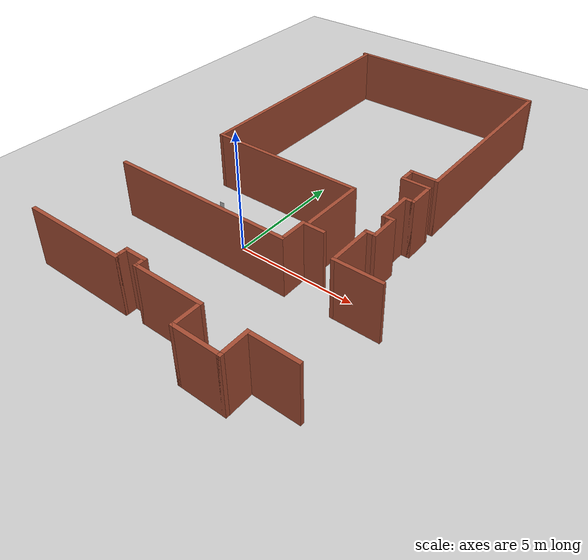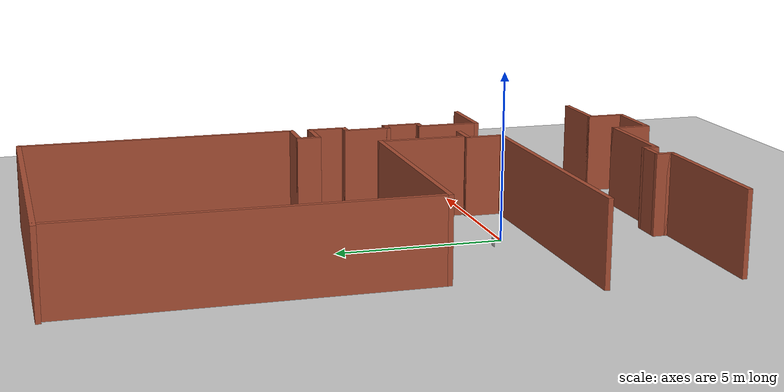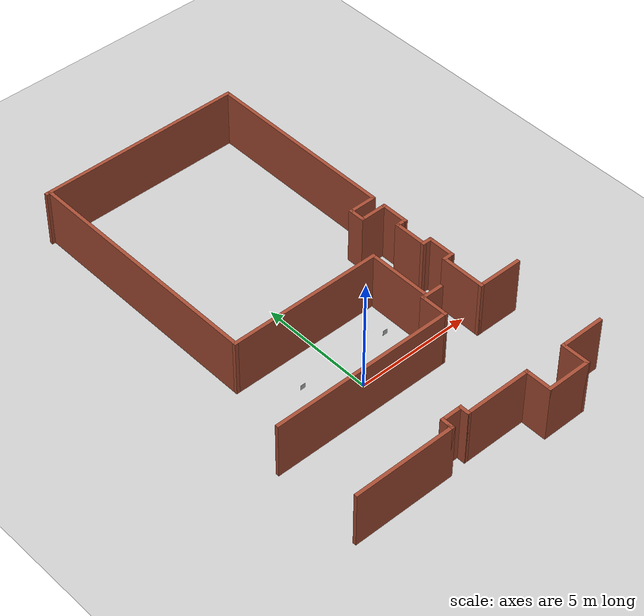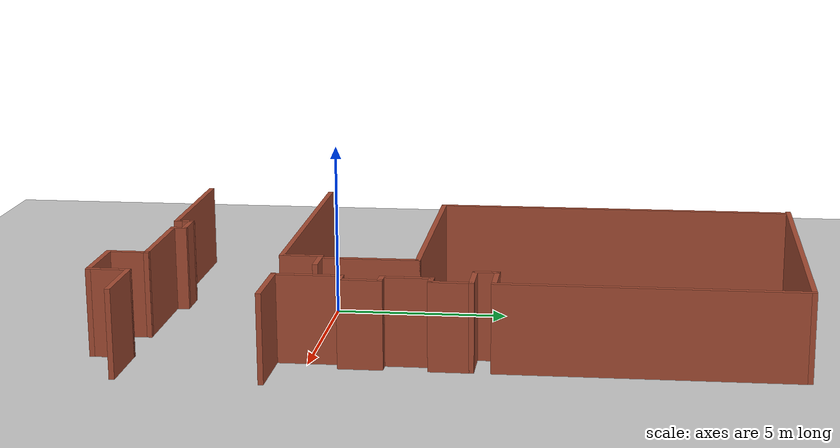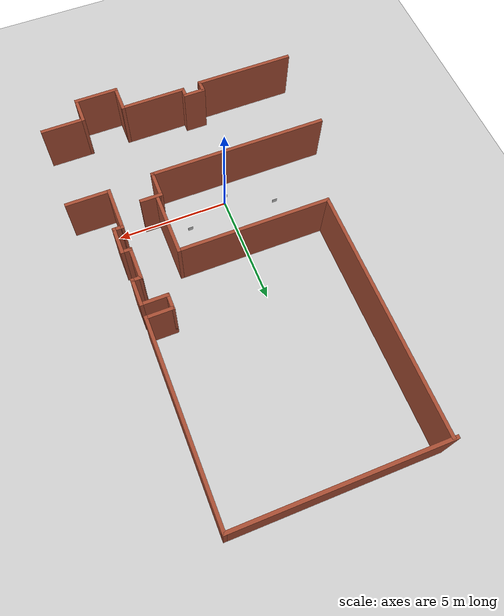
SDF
<sdf version="1.7">
 <world name="f1l3">
  <include><uri>model://f1l3</uri></include>
  <include>
   <uri>model://aruco1_pau_clase_resized</uri>
   <name>ar_marker_pau_1</name>
   <pose>2.0 1.0 0.5 0 0 1.57</pose>
  </include>
  <include>
   <uri>model://aruco2_pau_clase_resized</uri>
   <name>ar_marker_pau_2</name>
   <pose>-2.0 1.0 0.5 0 0 1.57</pose>
  </include>
  <include>
   <uri>model://aruco3_pau_clase_resized</uri>
   <name>ar_marker_pau_3</name>
   <pose>0.0 0 0.5 0 0 1.57</pose>
  </include>
  <include><uri>model://sun</uri></include>
  <include><uri>model://ground_plane</uri></include>
  <physics type="ode">
   <max_step_size>0.002</max_step_size>
   <real_time_factor>1.0</real_time_factor>
   <real_time_update_rate>500</real_time_update_rate>
   <gravity>0 0 -9.8</gravity>
  </physics>
  <scene>
   <ambient>0.4 0.4 0.4 1.0</ambient>
   <background>0.7 0.7 0.7 1.0</background>
   <shadows>false</shadows>
  </scene>
 </world>
</sdf>

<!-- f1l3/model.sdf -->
<sdf version='1.7'>
  <model name='Untitled'>
    <pose>0.831593 3.70943 0 0 -0 0</pose>
    <link name='Wall_0'>
      <collision name='Wall_0_Collision'>
        <geometry>
          <box>
            <size>8 0.15 2.5</size>
          </box>
        </geometry>
        <pose>0 0 1.25 0 -0 0</pose>
      </collision>
      <visual name='Wall_0_Visual'>
        <pose>0 0 1.25 0 -0 0</pose>
        <geometry>
          <box>
            <size>8 0.15 2.5</size>
          </box>
        </geometry>
        <material>
          <script>
            <uri>file://media/materials/scripts/gazebo.material</uri>
            <name>Gazebo/Bricks</name>
          </script>
          <ambient>1 1 1 1</ambient>
        </material>
        <meta>
          <layer>0</layer>
        </meta>
      </visual>
      <pose>-1.86397 -4.77145 0 0 -0 0</pose>
    </link>
    <link name='Wall_1'>
      <collision name='Wall_1_Collision'>
        <geometry>
          <box>
            <size>1.25 0.15 2.5</size>
          </box>
        </geometry>
        <pose>0 0 1.25 0 -0 0</pose>
      </collision>
      <visual name='Wall_1_Visual'>
        <pose>0 0 1.25 0 -0 0</pose>
        <geometry>
          <box>
            <size>1.25 0.15 2.5</size>
          </box>
        </geometry>
        <material>
          <script>
            <uri>file://media/materials/scripts/gazebo.material</uri>
            <name>Gazebo/Bricks</name>
          </script>
          <ambient>1 1 1 1</ambient>
        </material>
        <meta>
          <layer>0</layer>
        </meta>
      </visual>
      <pose>2.06103 -4.22145 0 0 -0 1.5708</pose>
    </link>
    <link name='Wall_10'>
      <collision name='Wall_10_Collision'>
        <geometry>
          <box>
            <size>3 0.15 2.5</size>
          </box>
        </geometry>
        <pose>0 0 1.25 0 -0 0</pose>
      </collision>
      <visual name='Wall_10_Visual'>
        <pose>0 0 1.25 0 -0 0</pose>
        <geometry>
          <box>
            <size>3 0.15 2.5</size>
          </box>
        </geometry>
        <material>
          <script>
            <uri>file://media/materials/scripts/gazebo.material</uri>
            <name>Gazebo/Bricks</name>
          </script>
          <ambient>1 1 1 1</ambient>
        </material>
        <meta>
          <layer>0</layer>
        </meta>
      </visual>
      <pose>0.739875 -8.63149 0 0 -0 0</pose>
    </link>
    <link name='Wall_11'>
      <collision name='Wall_11_Collision'>
        <geometry>
          <box>
            <size>1.25 0.15 2.5</size>
          </box>
        </geometry>
        <pose>0 0 1.25 0 -0 0</pose>
      </collision>
      <visual name='Wall_11_Visual'>
        <pose>0 0 1.25 0 -0 0</pose>
        <geometry>
          <box>
            <size>1.25 0.15 2.5</size>
          </box>
        </geometry>
        <material>
          <script>
            <uri>file://media/materials/scripts/gazebo.material</uri>
            <name>Gazebo/Bricks</name>
          </script>
          <ambient>1 1 1 1</ambient>
        </material>
        <meta>
          <layer>0</layer>
        </meta>
      </visual>
      <pose>2.16487 -9.18149 0 0 -0 -1.5708</pose>
    </link>
    <link name='Wall_12'>
      <collision name='Wall_12_Collision'>
        <geometry>
          <box>
            <size>2 0.15 2.5</size>
          </box>
        </geometry>
        <pose>0 0 1.25 0 -0 0</pose>
      </collision>
      <visual name='Wall_12_Visual'>
        <pose>0 0 1.25 0 -0 0</pose>
        <geometry>
          <box>
            <size>2 0.15 2.5</size>
          </box>
        </geometry>
        <material>
          <script>
            <uri>file://media/materials/scripts/gazebo.material</uri>
            <name>Gazebo/Bricks</name>
          </script>
          <ambient>1 1 1 1</ambient>
        </material>
        <meta>
          <layer>0</layer>
        </meta>
      </visual>
      <pose>3.08988 -9.73149 0 0 -0 0</pose>
    </link>
    <link name='Wall_13'>
      <collision name='Wall_13_Collision'>
        <geometry>
          <box>
            <size>1.25 0.15 2.5</size>
          </box>
        </geometry>
        <pose>0 0 1.25 0 -0 0</pose>
      </collision>
      <visual name='Wall_13_Visual'>
        <pose>0 0 1.25 0 -0 0</pose>
        <geometry>
          <box>
            <size>1.25 0.15 2.5</size>
          </box>
        </geometry>
        <material>
          <script>
            <uri>file://media/materials/scripts/gazebo.material</uri>
            <name>Gazebo/Bricks</name>
          </script>
          <ambient>1 1 1 1</ambient>
        </material>
        <meta>
          <layer>0</layer>
        </meta>
      </visual>
      <pose>4.01487 -9.18149 0 0 -0 1.5708</pose>
    </link>
    <link name='Wall_14'>
      <collision name='Wall_14_Collision'>
        <geometry>
          <box>
            <size>2 0.15 2.5</size>
          </box>
        </geometry>
        <pose>0 0 1.25 0 -0 0</pose>
      </collision>
      <visual name='Wall_14_Visual'>
        <pose>0 0 1.25 0 -0 0</pose>
        <geometry>
          <box>
            <size>2 0.15 2.5</size>
          </box>
        </geometry>
        <material>
          <script>
            <uri>file://media/materials/scripts/gazebo.material</uri>
            <name>Gazebo/Bricks</name>
          </script>
          <ambient>1 1 1 1</ambient>
        </material>
        <meta>
          <layer>0</layer>
        </meta>
      </visual>
      <pose>4.93987 -8.63149 0 0 -0 0</pose>
    </link>
    <link name='Wall_16'>
      <collision name='Wall_16_Collision'>
        <geometry>
          <box>
            <size>2 0.15 2.5</size>
          </box>
        </geometry>
        <pose>0 0 1.25 0 -0 0</pose>
      </collision>
      <visual name='Wall_16_Visual'>
        <pose>0 0 1.25 0 -0 0</pose>
        <geometry>
          <box>
            <size>2 0.15 2.5</size>
          </box>
        </geometry>
        <material>
          <script>
            <uri>file://media/materials/scripts/gazebo.material</uri>
            <name>Gazebo/Bricks</name>
          </script>
          <ambient>1 1 1 1</ambient>
        </material>
        <meta>
          <layer>0</layer>
        </meta>
      </visual>
      <pose>4.96012 -4.61851 0 0 -0 3.14159</pose>
    </link>
    <link name='Wall_17'>
      <collision name='Wall_17_Collision'>
        <geometry>
          <box>
            <size>2 0.15 2.5</size>
          </box>
        </geometry>
        <pose>0 0 1.25 0 -0 0</pose>
      </collision>
      <visual name='Wall_17_Visual'>
        <pose>0 0 1.25 0 -0 0</pose>
        <geometry>
          <box>
            <size>2 0.15 2.5</size>
          </box>
        </geometry>
        <material>
          <script>
            <uri>file://media/materials/scripts/gazebo.material</uri>
            <name>Gazebo/Bricks</name>
          </script>
          <ambient>1 1 1 1</ambient>
        </material>
        <meta>
          <layer>0</layer>
        </meta>
      </visual>
      <pose>4.03512 -3.69351 0 0 -0 1.5708</pose>
    </link>
    <link name='Wall_18'>
      <collision name='Wall_18_Collision'>
        <geometry>
          <box>
            <size>0.5 0.15 2.5</size>
          </box>
        </geometry>
        <pose>0 0 1.25 0 -0 0</pose>
      </collision>
      <visual name='Wall_18_Visual'>
        <pose>0 0 1.25 0 -0 0</pose>
        <geometry>
          <box>
            <size>0.5 0.15 2.5</size>
          </box>
        </geometry>
        <material>
          <script>
            <uri>file://media/materials/scripts/gazebo.material</uri>
            <name>Gazebo/Bricks</name>
          </script>
          <ambient>1 1 1 1</ambient>
        </material>
        <meta>
          <layer>0</layer>
        </meta>
      </visual>
      <pose>4.21012 -2.76851 0 0 -0 0</pose>
    </link>
    <link name='Wall_19'>
      <collision name='Wall_19_Collision'>
        <geometry>
          <box>
            <size>1.25 0.15 2.5</size>
          </box>
        </geometry>
        <pose>0 0 1.25 0 -0 0</pose>
      </collision>
      <visual name='Wall_19_Visual'>
        <pose>0 0 1.25 0 -0 0</pose>
        <geometry>
          <box>
            <size>1.25 0.15 2.5</size>
          </box>
        </geometry>
        <material>
          <script>
            <uri>file://media/materials/scripts/gazebo.material</uri>
            <name>Gazebo/Bricks</name>
          </script>
          <ambient>1 1 1 1</ambient>
        </material>
        <meta>
          <layer>0</layer>
        </meta>
      </visual>
      <pose>4.38513 -2.21851 0 0 -0 1.5708</pose>
    </link>
    <link name='Wall_20'>
      <collision name='Wall_20_Collision'>
        <geometry>
          <box>
            <size>0.5 0.15 2.5</size>
          </box>
        </geometry>
        <pose>0 0 1.25 0 -0 0</pose>
      </collision>
      <visual name='Wall_20_Visual'>
        <pose>0 0 1.25 0 -0 0</pose>
        <geometry>
          <box>
            <size>0.5 0.15 2.5</size>
          </box>
        </geometry>
        <material>
          <script>
            <uri>file://media/materials/scripts/gazebo.material</uri>
            <name>Gazebo/Bricks</name>
          </script>
          <ambient>1 1 1 1</ambient>
        </material>
        <meta>
          <layer>0</layer>
        </meta>
      </visual>
      <pose>4.21012 -1.66851 0 0 -0 3.14159</pose>
    </link>
    <link name='Wall_23'>
      <collision name='Wall_23_Collision'>
        <geometry>
          <box>
            <size>1.5 0.15 2.5</size>
          </box>
        </geometry>
        <pose>0 0 1.25 0 -0 0</pose>
      </collision>
      <visual name='Wall_23_Visual'>
        <pose>0 0 1.25 0 -0 0</pose>
        <geometry>
          <box>
            <size>1.5 0.15 2.5</size>
          </box>
        </geometry>
        <material>
          <script>
            <uri>file://media/materials/scripts/gazebo.material</uri>
            <name>Gazebo/Bricks</name>
          </script>
          <ambient>1 1 1 1</ambient>
        </material>
        <meta>
          <layer>0</layer>
        </meta>
      </visual>
      <pose>4.03512 -0.993512 0 0 -0 1.5708</pose>
    </link>
    <link name='Wall_24'>
      <collision name='Wall_24_Collision'>
        <geometry>
          <box>
            <size>0.5 0.15 2.5</size>
          </box>
        </geometry>
        <pose>0 0 1.25 0 -0 0</pose>
      </collision>
      <visual name='Wall_24_Visual'>
        <pose>0 0 1.25 0 -0 0</pose>
        <geometry>
          <box>
            <size>0.5 0.15 2.5</size>
          </box>
        </geometry>
        <material>
          <script>
            <uri>file://media/materials/scripts/gazebo.material</uri>
            <name>Gazebo/Bricks</name>
          </script>
          <ambient>1 1 1 1</ambient>
        </material>
        <meta>
          <layer>0</layer>
        </meta>
      </visual>
      <pose>4.21012 -0.318512 0 0 -0 0</pose>
    </link>
    <link name='Wall_25'>
      <collision name='Wall_25_Collision'>
        <geometry>
          <box>
            <size>1.25 0.15 2.5</size>
          </box>
        </geometry>
        <pose>0 0 1.25 0 -0 0</pose>
      </collision>
      <visual name='Wall_25_Visual'>
        <pose>0 0 1.25 0 -0 0</pose>
        <geometry>
          <box>
            <size>1.25 0.15 2.5</size>
          </box>
        </geometry>
        <material>
          <script>
            <uri>file://media/materials/scripts/gazebo.material</uri>
            <name>Gazebo/Bricks</name>
          </script>
          <ambient>1 1 1 1</ambient>
        </material>
        <meta>
          <layer>0</layer>
        </meta>
      </visual>
      <pose>4.38513 0.231488 0 0 -0 1.5708</pose>
    </link>
    <link name='Wall_26'>
      <collision name='Wall_26_Collision'>
        <geometry>
          <box>
            <size>1.25 0.15 2.5</size>
          </box>
        </geometry>
        <pose>0 0 1.25 0 -0 0</pose>
      </collision>
      <visual name='Wall_26_Visual'>
        <pose>0 0 1.25 0 -0 0</pose>
        <geometry>
          <box>
            <size>1.25 0.15 2.5</size>
          </box>
        </geometry>
        <material>
          <script>
            <uri>file://media/materials/scripts/gazebo.material</uri>
            <name>Gazebo/Bricks</name>
          </script>
          <ambient>1 1 1 1</ambient>
        </material>
        <meta>
          <layer>0</layer>
        </meta>
      </visual>
      <pose>3.83513 0.781488 0 0 -0 3.14159</pose>
    </link>
    <link name='Wall_27'>
      <collision name='Wall_27_Collision'>
        <geometry>
          <box>
            <size>0.75 0.15 2.5</size>
          </box>
        </geometry>
        <pose>0 0 1.25 0 -0 0</pose>
      </collision>
      <visual name='Wall_27_Visual'>
        <pose>0 0 1.25 0 -0 0</pose>
        <geometry>
          <box>
            <size>0.75 0.15 2.5</size>
          </box>
        </geometry>
        <material>
          <script>
            <uri>file://media/materials/scripts/gazebo.material</uri>
            <name>Gazebo/Bricks</name>
          </script>
          <ambient>1 1 1 1</ambient>
        </material>
        <meta>
          <layer>0</layer>
        </meta>
      </visual>
      <pose>3.28512 1.08149 0 0 -0 1.5708</pose>
    </link>
    <link name='Wall_28'>
      <collision name='Wall_28_Collision'>
        <geometry>
          <box>
            <size>1.25 0.15 2.5</size>
          </box>
        </geometry>
        <pose>0 0 1.25 0 -0 0</pose>
      </collision>
      <visual name='Wall_28_Visual'>
        <pose>0 0 1.25 0 -0 0</pose>
        <geometry>
          <box>
            <size>1.25 0.15 2.5</size>
          </box>
        </geometry>
        <material>
          <script>
            <uri>file://media/materials/scripts/gazebo.material</uri>
            <name>Gazebo/Bricks</name>
          </script>
          <ambient>1 1 1 1</ambient>
        </material>
        <meta>
          <layer>0</layer>
        </meta>
      </visual>
      <pose>3.83513 1.38149 0 0 -0 0</pose>
    </link>
    <link name='Wall_3'>
      <collision name='Wall_3_Collision'>
        <geometry>
          <box>
            <size>1 0.15 2.5</size>
          </box>
        </geometry>
        <pose>0 0 1.25 0 -0 0</pose>
      </collision>
      <visual name='Wall_3_Visual'>
        <pose>0 0 1.25 0 -0 0</pose>
        <geometry>
          <box>
            <size>1 0.15 2.5</size>
          </box>
        </geometry>
        <material>
          <script>
            <uri>file://media/materials/scripts/gazebo.material</uri>
            <name>Gazebo/Bricks</name>
          </script>
          <ambient>1 1 1 1</ambient>
        </material>
        <meta>
          <layer>0</layer>
        </meta>
      </visual>
      <pose>2.48603 -3.67145 0 0 -0 0</pose>
    </link>
    <link name='Wall_31'>
      <collision name='Wall_31_Collision'>
        <geometry>
          <box>
            <size>6.75 0.15 2.5</size>
          </box>
        </geometry>
        <pose>0 0 1.25 0 -0 0</pose>
      </collision>
      <visual name='Wall_31_Visual'>
        <pose>0 0 1.25 0 -0 0</pose>
        <geometry>
          <box>
            <size>6.75 0.15 2.5</size>
          </box>
        </geometry>
        <material>
          <script>
            <uri>file://media/materials/scripts/gazebo.material</uri>
            <name>Gazebo/Bricks</name>
          </script>
          <ambient>1 1 1 1</ambient>
        </material>
        <meta>
          <layer>0</layer>
        </meta>
      </visual>
      <pose>-1.06432 -0.915403 0 0 -0 3.14159</pose>
    </link>
    <link name='Wall_33'>
      <collision name='Wall_33_Collision'>
        <geometry>
          <box>
            <size>8.5 0.15 2.5</size>
          </box>
        </geometry>
        <pose>0 0 1.25 0 -0 0</pose>
      </collision>
      <visual name='Wall_33_Visual'>
        <pose>0 0 1.25 0 -0 0</pose>
        <geometry>
          <box>
            <size>8.5 0.15 2.5</size>
          </box>
        </geometry>
        <material>
          <script>
            <uri>file://media/materials/scripts/gazebo.material</uri>
            <name>Gazebo/Bricks</name>
          </script>
          <ambient>1 1 1 1</ambient>
        </material>
        <meta>
          <layer>0</layer>
        </meta>
      </visual>
      <pose>4.38513 5.55649 0 0 -0 1.5708</pose>
    </link>
    <link name='Wall_36'>
      <collision name='Wall_36_Collision'>
        <geometry>
          <box>
            <size>9.03547 0.15 2.5</size>
          </box>
        </geometry>
        <pose>0 0 1.25 0 -0 0</pose>
      </collision>
      <visual name='Wall_36_Visual'>
        <pose>0 0 1.25 0 -0 0</pose>
        <geometry>
          <box>
            <size>9.03547 0.15 2.5</size>
          </box>
        </geometry>
        <material>
          <script>
            <uri>file://media/materials/scripts/gazebo.material</uri>
            <name>Gazebo/Bricks</name>
          </script>
          <ambient>1 1 1 1</ambient>
        </material>
        <meta>
          <layer>0</layer>
        </meta>
      </visual>
      <pose>-0.057608 9.73149 0 0 -0 3.14159</pose>
    </link>
    <link name='Wall_39'>
      <collision name='Wall_39_Collision'>
        <geometry>
          <box>
            <size>2.75 0.15 2.5</size>
          </box>
        </geometry>
        <pose>0 0 1.25 0 -0 0</pose>
      </collision>
      <visual name='Wall_39_Visual'>
        <pose>0 0 1.25 0 -0 0</pose>
        <geometry>
          <box>
            <size>2.75 0.15 2.5</size>
          </box>
        </geometry>
        <material>
          <script>
            <uri>file://media/materials/scripts/gazebo.material</uri>
            <name>Gazebo/Bricks</name>
          </script>
          <ambient>1 1 1 1</ambient>
        </material>
        <meta>
          <layer>0</layer>
        </meta>
      </visual>
      <pose>2.23568 -2.2154 0 0 -0 -1.5708</pose>
    </link>
    <link name='Wall_41'>
      <collision name='Wall_41_Collision'>
        <geometry>
          <box>
            <size>10.75 0.15 2.5</size>
          </box>
        </geometry>
        <pose>0 0 1.25 0 -0 0</pose>
      </collision>
      <visual name='Wall_41_Visual'>
        <pose>0 0 1.25 0 -0 0</pose>
        <geometry>
          <box>
            <size>10.75 0.15 2.5</size>
          </box>
        </geometry>
        <material>
          <script>
            <uri>file://media/materials/scripts/gazebo.material</uri>
            <name>Gazebo/Bricks</name>
          </script>
          <ambient>1 1 1 1</ambient>
        </material>
        <meta>
          <layer>0</layer>
        </meta>
      </visual>
      <pose>-4.36432 4.3846 0 0 -0 1.5708</pose>
    </link>
    <link name='Wall_5'>
      <collision name='Wall_5_Collision'>
        <geometry>
          <box>
            <size>4.5 0.15 2.5</size>
          </box>
        </geometry>
        <pose>0 0 1.25 0 -0 0</pose>
      </collision>
      <visual name='Wall_5_Visual'>
        <pose>0 0 1.25 0 -0 0</pose>
        <geometry>
          <box>
            <size>4.5 0.15 2.5</size>
          </box>
        </geometry>
        <material>
          <script>
            <uri>file://media/materials/scripts/gazebo.material</uri>
            <name>Gazebo/Bricks</name>
          </script>
          <ambient>1 1 1 1</ambient>
        </material>
        <meta>
          <layer>0</layer>
        </meta>
      </visual>
      <pose>-3.71013 -8.73149 0 0 -0 0</pose>
    </link>
    <link name='Wall_6'>
      <collision name='Wall_6_Collision'>
        <geometry>
          <box>
            <size>0.25 0.15 2.5</size>
          </box>
        </geometry>
        <pose>0 0 1.25 0 -0 0</pose>
      </collision>
      <visual name='Wall_6_Visual'>
        <pose>0 0 1.25 0 -0 0</pose>
        <geometry>
          <box>
            <size>0.25 0.15 2.5</size>
          </box>
        </geometry>
        <material>
          <script>
            <uri>file://media/materials/scripts/gazebo.material</uri>
            <name>Gazebo/Bricks</name>
          </script>
          <ambient>1 1 1 1</ambient>
        </material>
        <meta>
          <layer>0</layer>
        </meta>
      </visual>
      <pose>-1.53513 -8.68149 0 0 -0 1.5708</pose>
    </link>
    <link name='Wall_7'>
      <collision name='Wall_7_Collision'>
        <geometry>
          <box>
            <size>0.5 0.15 2.5</size>
          </box>
        </geometry>
        <pose>0 0 1.25 0 -0 0</pose>
      </collision>
      <visual name='Wall_7_Visual'>
        <pose>0 0 1.25 0 -0 0</pose>
        <geometry>
          <box>
            <size>0.5 0.15 2.5</size>
          </box>
        </geometry>
        <material>
          <script>
            <uri>file://media/materials/scripts/gazebo.material</uri>
            <name>Gazebo/Bricks</name>
          </script>
          <ambient>1 1 1 1</ambient>
        </material>
        <meta>
          <layer>0</layer>
        </meta>
      </visual>
      <pose>-1.53513 -8.45649 0 0 -0 1.5708</pose>
    </link>
    <link name='Wall_8'>
      <collision name='Wall_8_Collision'>
        <geometry>
          <box>
            <size>1 0.15 2.5</size>
          </box>
        </geometry>
        <pose>0 0 1.25 0 -0 0</pose>
      </collision>
      <visual name='Wall_8_Visual'>
        <pose>0 0 1.25 0 -0 0</pose>
        <geometry>
          <box>
            <size>1 0.15 2.5</size>
          </box>
        </geometry>
        <material>
          <script>
            <uri>file://media/materials/scripts/gazebo.material</uri>
            <name>Gazebo/Bricks</name>
          </script>
          <ambient>1 1 1 1</ambient>
        </material>
        <meta>
          <layer>0</layer>
        </meta>
      </visual>
      <pose>-1.11013 -8.28149 0 0 -0 0</pose>
    </link>
    <link name='Wall_9'>
      <collision name='Wall_9_Collision'>
        <geometry>
          <box>
            <size>0.5 0.15 2.5</size>
          </box>
        </geometry>
        <pose>0 0 1.25 0 -0 0</pose>
      </collision>
      <visual name='Wall_9_Visual'>
        <pose>0 0 1.25 0 -0 0</pose>
        <geometry>
          <box>
            <size>0.5 0.15 2.5</size>
          </box>
        </geometry>
        <material>
          <script>
            <uri>file://media/materials/scripts/gazebo.material</uri>
            <name>Gazebo/Bricks</name>
          </script>
          <ambient>1 1 1 1</ambient>
        </material>
        <meta>
          <layer>0</layer>
        </meta>
      </visual>
      <pose>-0.685125 -8.45649 0 0 -0 -1.5708</pose>
    </link>
    <static>1</static>
  </model>
</sdf>

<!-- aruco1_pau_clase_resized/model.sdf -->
<sdf version="1.6">
  <model name="aruco1_pau_clase_resized">
    <static>true</static>
    <link name="link">
      <visual name="visual">
        <geometry>
          <mesh>
            <uri>model://aruco1_pau_clase_resized/meshes/aruco1_pau_clase_resized.dae</uri>
          <scale>0.44 0.44 0.44</scale></mesh>
        </geometry>
      </visual>
    </link>
  </model>
</sdf>

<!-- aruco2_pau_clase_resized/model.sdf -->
<sdf version="1.6">
  <model name="aruco2_pau_clase_resized">
    <static>true</static>
    <link name="link">
      <visual name="visual">
        <geometry>
          <mesh>
            <uri>model://aruco2_pau_clase_resized/meshes/aruco2_pau_clase_resized.dae</uri>
          <scale>0.44 0.44 0.44</scale></mesh>
        </geometry>
      </visual>
    </link>
  </model>
</sdf>

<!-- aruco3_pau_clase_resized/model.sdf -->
<sdf version="1.6">
  <model name="aruco3_pau_clase_resized">
    <static>true</static>
    <link name="link">
      <visual name="visual">
        <geometry>
          <mesh>
            <uri>model://aruco3_pau_clase_resized/meshes/aruco3_pau_clase_resized.dae</uri>
          <scale>0.44 0.44 0.44</scale></mesh>
        </geometry>
      </visual>
    </link>
  </model>
</sdf>
